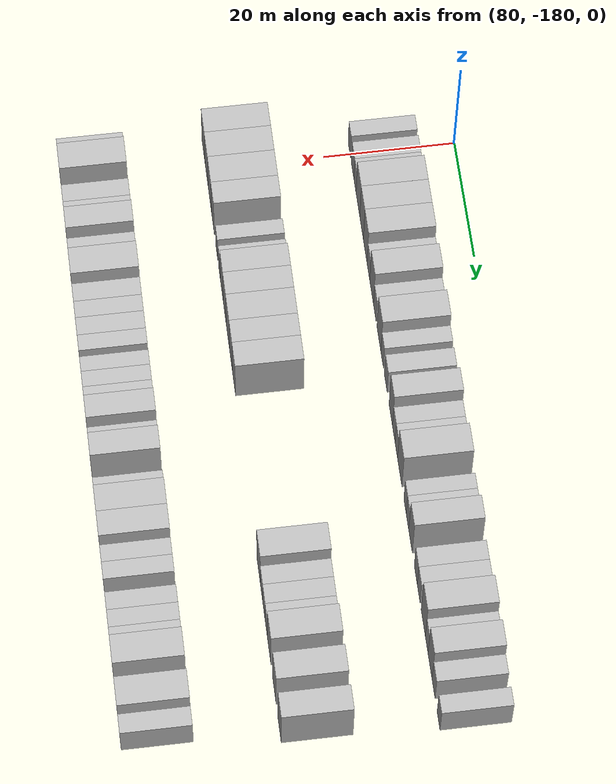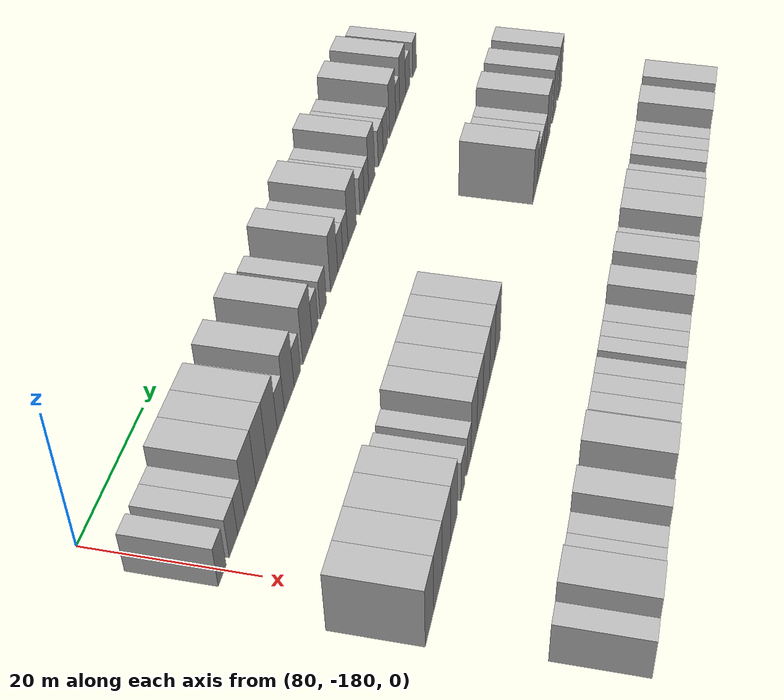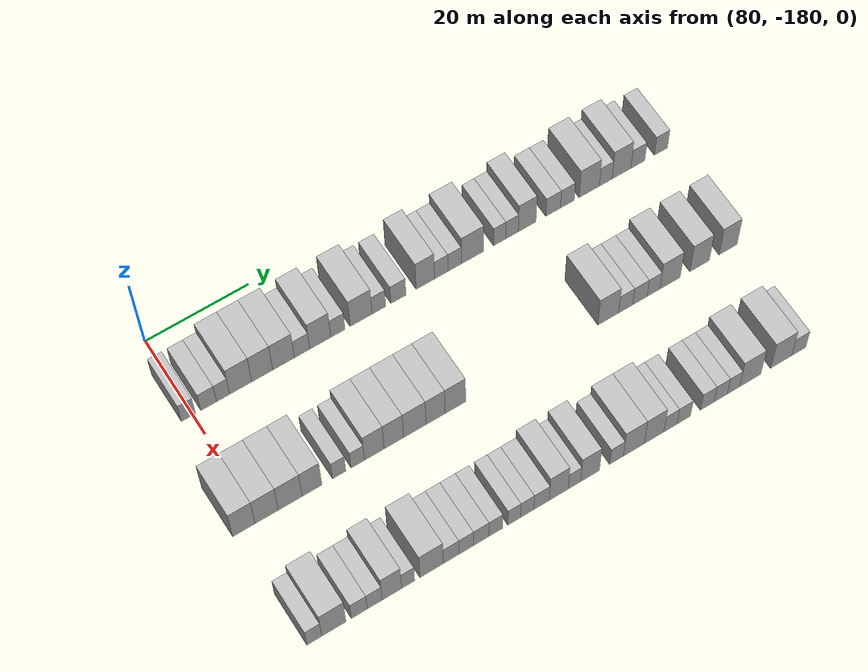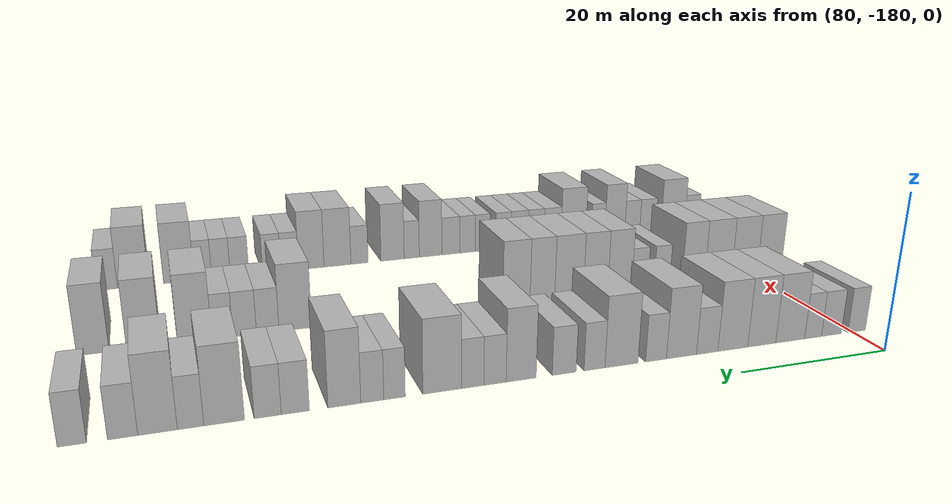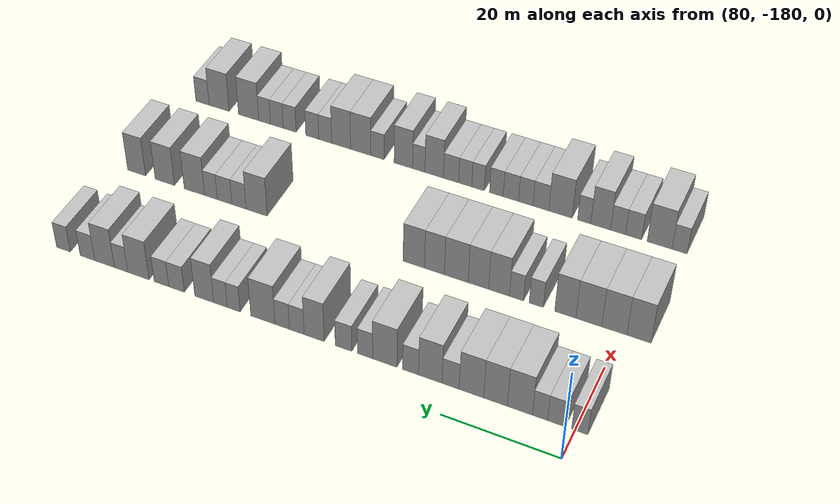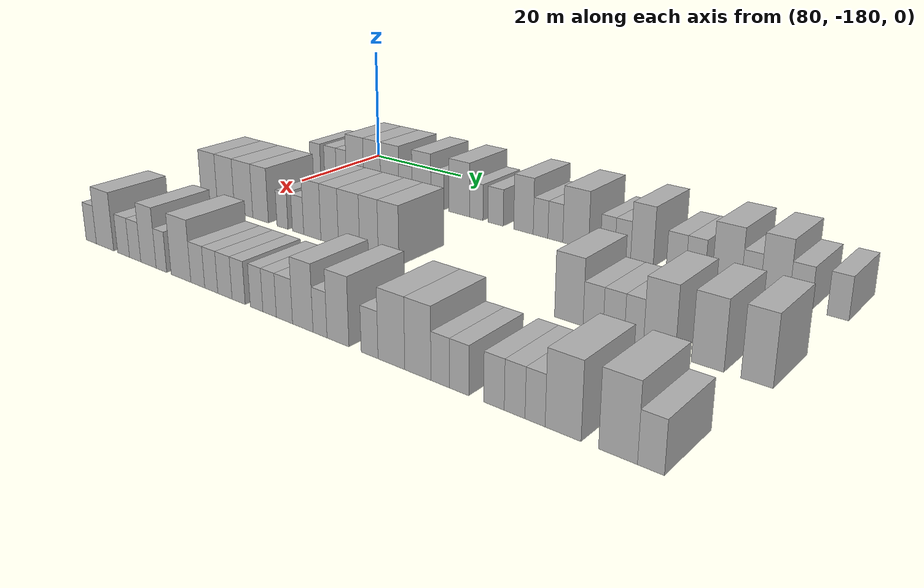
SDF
<sdf version="1.6">
 <world name="default">
  <model name="building_626">
   <static>1</static>
   <pose>91.0000 -180.7592 0 0.000000 0.000000 0.000000</pose>
   <link name="link">
    <pose>0 0 3.00 0 0 0</pose>
    <collision name="collision"><geometry><box><size>10.0000 2.6649 6.0000</size></box></geometry></collision>
    <visual name="visual">
     <cast_shadows>0</cast_shadows>
     <geometry><box><size>10.0000 2.6649 6.0000</size></box></geometry>
     <material>
      <script>
       <uri>model://HANNAS_wall/materials/scripts</uri>
       <uri>model://HANNAS_wall/materials/textures</uri>
       <name>vrc/HANNAS_wall</name>
      </script>
     </material>
    </visual>
   </link>
  </model>
  <model name="building_627">
   <static>1</static>
   <pose>91.0000 -176.9493 0 0.000000 0.000000 0.000000</pose>
   <link name="link">
    <pose>0 0 3.00 0 0 0</pose>
    <collision name="collision"><geometry><box><size>10.0000 2.9548 6.0000</size></box></geometry></collision>
    <visual name="visual">
     <cast_shadows>0</cast_shadows>
     <geometry><box><size>10.0000 2.9548 6.0000</size></box></geometry>
     <material>
      <script>
       <uri>model://HANNAS_wall/materials/scripts</uri>
       <uri>model://HANNAS_wall/materials/textures</uri>
       <name>vrc/HANNAS_wall</name>
      </script>
     </material>
    </visual>
   </link>
  </model>
  <model name="building_628">
   <static>1</static>
   <pose>91.0000 -174.2246 0 0.000000 0.000000 0.000000</pose>
   <link name="link">
    <pose>0 0 3.00 0 0 0</pose>
    <collision name="collision"><geometry><box><size>10.0000 2.4947 6.0000</size></box></geometry></collision>
    <visual name="visual">
     <cast_shadows>0</cast_shadows>
     <geometry><box><size>10.0000 2.4947 6.0000</size></box></geometry>
     <material>
      <script>
       <uri>model://HANNAS_wall/materials/scripts</uri>
       <uri>model://HANNAS_wall/materials/textures</uri>
       <name>vrc/HANNAS_wall</name>
      </script>
     </material>
    </visual>
   </link>
  </model>
  <model name="building_629">
   <static>1</static>
   <pose>91.0000 -170.8726 0 0.000000 0.000000 0.000000</pose>
   <link name="link">
    <pose>0 0 4.50 0 0 0</pose>
    <collision name="collision"><geometry><box><size>10.0000 4.2093 9.0000</size></box></geometry></collision>
    <visual name="visual">
     <cast_shadows>0</cast_shadows>
     <geometry><box><size>10.0000 4.2093 9.0000</size></box></geometry>
     <material>
      <script>
       <uri>model://HANNAS_wall/materials/scripts</uri>
       <uri>model://HANNAS_wall/materials/textures</uri>
       <name>vrc/HANNAS_wall</name>
      </script>
     </material>
    </visual>
   </link>
  </model>
  <model name="building_630">
   <static>1</static>
   <pose>91.0000 -166.7608 0 0.000000 0.000000 0.000000</pose>
   <link name="link">
    <pose>0 0 4.50 0 0 0</pose>
    <collision name="collision"><geometry><box><size>10.0000 4.0141 9.0000</size></box></geometry></collision>
    <visual name="visual">
     <cast_shadows>0</cast_shadows>
     <geometry><box><size>10.0000 4.0141 9.0000</size></box></geometry>
     <material>
      <script>
       <uri>model://HANNAS_wall/materials/scripts</uri>
       <uri>model://HANNAS_wall/materials/textures</uri>
       <name>vrc/HANNAS_wall</name>
      </script>
     </material>
    </visual>
   </link>
  </model>
  <model name="building_631">
   <static>1</static>
   <pose>91.0000 -162.6699 0 0.000000 0.000000 0.000000</pose>
   <link name="link">
    <pose>0 0 4.50 0 0 0</pose>
    <collision name="collision"><geometry><box><size>10.0000 4.1678 9.0000</size></box></geometry></collision>
    <visual name="visual">
     <cast_shadows>0</cast_shadows>
     <geometry><box><size>10.0000 4.1678 9.0000</size></box></geometry>
     <material>
      <script>
       <uri>model://HANNAS_wall/materials/scripts</uri>
       <uri>model://HANNAS_wall/materials/textures</uri>
       <name>vrc/HANNAS_wall</name>
      </script>
     </material>
    </visual>
   </link>
  </model>
  <model name="building_632">
   <static>1</static>
   <pose>91.0000 -159.1127 0 0.000000 0.000000 0.000000</pose>
   <link name="link">
    <pose>0 0 3.00 0 0 0</pose>
    <collision name="collision"><geometry><box><size>10.0000 2.9465 6.0000</size></box></geometry></collision>
    <visual name="visual">
     <cast_shadows>0</cast_shadows>
     <geometry><box><size>10.0000 2.9465 6.0000</size></box></geometry>
     <material>
      <script>
       <uri>model://HANNAS_wall/materials/scripts</uri>
       <uri>model://HANNAS_wall/materials/textures</uri>
       <name>vrc/HANNAS_wall</name>
      </script>
     </material>
    </visual>
   </link>
  </model>
  <model name="building_633">
   <static>1</static>
   <pose>91.0000 -155.6020 0 0.000000 0.000000 0.000000</pose>
   <link name="link">
    <pose>0 0 4.50 0 0 0</pose>
    <collision name="collision"><geometry><box><size>10.0000 4.0749 9.0000</size></box></geometry></collision>
    <visual name="visual">
     <cast_shadows>0</cast_shadows>
     <geometry><box><size>10.0000 4.0749 9.0000</size></box></geometry>
     <material>
      <script>
       <uri>model://HANNAS_wall/materials/scripts</uri>
       <uri>model://HANNAS_wall/materials/textures</uri>
       <name>vrc/HANNAS_wall</name>
      </script>
     </material>
    </visual>
   </link>
  </model>
  <model name="building_634">
   <static>1</static>
   <pose>91.0000 -152.1808 0 0.000000 0.000000 0.000000</pose>
   <link name="link">
    <pose>0 0 3.00 0 0 0</pose>
    <collision name="collision"><geometry><box><size>10.0000 2.7675 6.0000</size></box></geometry></collision>
    <visual name="visual">
     <cast_shadows>0</cast_shadows>
     <geometry><box><size>10.0000 2.7675 6.0000</size></box></geometry>
     <material>
      <script>
       <uri>model://HANNAS_wall/materials/scripts</uri>
       <uri>model://HANNAS_wall/materials/textures</uri>
       <name>vrc/HANNAS_wall</name>
      </script>
     </material>
    </visual>
   </link>
  </model>
  <model name="building_635">
   <static>1</static>
   <pose>91.0000 -147.6488 0 0.000000 0.000000 0.000000</pose>
   <link name="link">
    <pose>0 0 4.50 0 0 0</pose>
    <collision name="collision"><geometry><box><size>10.0000 4.2965 9.0000</size></box></geometry></collision>
    <visual name="visual">
     <cast_shadows>0</cast_shadows>
     <geometry><box><size>10.0000 4.2965 9.0000</size></box></geometry>
     <material>
      <script>
       <uri>model://HANNAS_wall/materials/scripts</uri>
       <uri>model://HANNAS_wall/materials/textures</uri>
       <name>vrc/HANNAS_wall</name>
      </script>
     </material>
    </visual>
   </link>
  </model>
  <model name="building_636">
   <static>1</static>
   <pose>91.0000 -144.1586 0 0.000000 0.000000 0.000000</pose>
   <link name="link">
    <pose>0 0 3.00 0 0 0</pose>
    <collision name="collision"><geometry><box><size>10.0000 2.6838 6.0000</size></box></geometry></collision>
    <visual name="visual">
     <cast_shadows>0</cast_shadows>
     <geometry><box><size>10.0000 2.6838 6.0000</size></box></geometry>
     <material>
      <script>
       <uri>model://HANNAS_wall/materials/scripts</uri>
       <uri>model://HANNAS_wall/materials/textures</uri>
       <name>vrc/HANNAS_wall</name>
      </script>
     </material>
    </visual>
   </link>
  </model>
  <model name="building_637">
   <static>1</static>
   <pose>91.0000 -140.3215 0 0.000000 0.000000 0.000000</pose>
   <link name="link">
    <pose>0 0 3.00 0 0 0</pose>
    <collision name="collision"><geometry><box><size>10.0000 2.9904 6.0000</size></box></geometry></collision>
    <visual name="visual">
     <cast_shadows>0</cast_shadows>
     <geometry><box><size>10.0000 2.9904 6.0000</size></box></geometry>
     <material>
      <script>
       <uri>model://HANNAS_wall/materials/scripts</uri>
       <uri>model://HANNAS_wall/materials/textures</uri>
       <name>vrc/HANNAS_wall</name>
      </script>
     </material>
    </visual>
   </link>
  </model>
  <model name="building_638">
   <static>1</static>
   <pose>91.0000 -135.0007 0 0.000000 0.000000 0.000000</pose>
   <link name="link">
    <pose>0 0 4.50 0 0 0</pose>
    <collision name="collision"><geometry><box><size>10.0000 3.6511 9.0000</size></box></geometry></collision>
    <visual name="visual">
     <cast_shadows>0</cast_shadows>
     <geometry><box><size>10.0000 3.6511 9.0000</size></box></geometry>
     <material>
      <script>
       <uri>model://HANNAS_wall/materials/scripts</uri>
       <uri>model://HANNAS_wall/materials/textures</uri>
       <name>vrc/HANNAS_wall</name>
      </script>
     </material>
    </visual>
   </link>
  </model>
  <model name="building_639">
   <static>1</static>
   <pose>91.0000 -131.8270 0 0.000000 0.000000 0.000000</pose>
   <link name="link">
    <pose>0 0 3.00 0 0 0</pose>
    <collision name="collision"><geometry><box><size>10.0000 2.6963 6.0000</size></box></geometry></collision>
    <visual name="visual">
     <cast_shadows>0</cast_shadows>
     <geometry><box><size>10.0000 2.6963 6.0000</size></box></geometry>
     <material>
      <script>
       <uri>model://HANNAS_wall/materials/scripts</uri>
       <uri>model://HANNAS_wall/materials/textures</uri>
       <name>vrc/HANNAS_wall</name>
      </script>
     </material>
    </visual>
   </link>
  </model>
  <model name="building_640">
   <static>1</static>
   <pose>91.0000 -129.1534 0 0.000000 0.000000 0.000000</pose>
   <link name="link">
    <pose>0 0 3.00 0 0 0</pose>
    <collision name="collision"><geometry><box><size>10.0000 2.6509 6.0000</size></box></geometry></collision>
    <visual name="visual">
     <cast_shadows>0</cast_shadows>
     <geometry><box><size>10.0000 2.6509 6.0000</size></box></geometry>
     <material>
      <script>
       <uri>model://HANNAS_wall/materials/scripts</uri>
       <uri>model://HANNAS_wall/materials/textures</uri>
       <name>vrc/HANNAS_wall</name>
      </script>
     </material>
    </visual>
   </link>
  </model>
  <model name="building_641">
   <static>1</static>
   <pose>91.0000 -125.5839 0 0.000000 0.000000 0.000000</pose>
   <link name="link">
    <pose>0 0 4.50 0 0 0</pose>
    <collision name="collision"><geometry><box><size>10.0000 4.4882 9.0000</size></box></geometry></collision>
    <visual name="visual">
     <cast_shadows>0</cast_shadows>
     <geometry><box><size>10.0000 4.4882 9.0000</size></box></geometry>
     <material>
      <script>
       <uri>model://HANNAS_wall/materials/scripts</uri>
       <uri>model://HANNAS_wall/materials/textures</uri>
       <name>vrc/HANNAS_wall</name>
      </script>
     </material>
    </visual>
   </link>
  </model>
  <model name="building_642">
   <static>1</static>
   <pose>91.0000 -120.1271 0 0.000000 0.000000 0.000000</pose>
   <link name="link">
    <pose>0 0 3.00 0 0 0</pose>
    <collision name="collision"><geometry><box><size>10.0000 2.4254 6.0000</size></box></geometry></collision>
    <visual name="visual">
     <cast_shadows>0</cast_shadows>
     <geometry><box><size>10.0000 2.4254 6.0000</size></box></geometry>
     <material>
      <script>
       <uri>model://HANNAS_wall/materials/scripts</uri>
       <uri>model://HANNAS_wall/materials/textures</uri>
       <name>vrc/HANNAS_wall</name>
      </script>
     </material>
    </visual>
   </link>
  </model>
  <model name="building_643">
   <static>1</static>
   <pose>91.0000 -117.6336 0 0.000000 0.000000 0.000000</pose>
   <link name="link">
    <pose>0 0 3.00 0 0 0</pose>
    <collision name="collision"><geometry><box><size>10.0000 2.5616 6.0000</size></box></geometry></collision>
    <visual name="visual">
     <cast_shadows>0</cast_shadows>
     <geometry><box><size>10.0000 2.5616 6.0000</size></box></geometry>
     <material>
      <script>
       <uri>model://HANNAS_wall/materials/scripts</uri>
       <uri>model://HANNAS_wall/materials/textures</uri>
       <name>vrc/HANNAS_wall</name>
      </script>
     </material>
    </visual>
   </link>
  </model>
  <model name="building_644">
   <static>1</static>
   <pose>91.0000 -114.5478 0 0.000000 0.000000 0.000000</pose>
   <link name="link">
    <pose>0 0 4.50 0 0 0</pose>
    <collision name="collision"><geometry><box><size>10.0000 3.6099 9.0000</size></box></geometry></collision>
    <visual name="visual">
     <cast_shadows>0</cast_shadows>
     <geometry><box><size>10.0000 3.6099 9.0000</size></box></geometry>
     <material>
      <script>
       <uri>model://HANNAS_wall/materials/scripts</uri>
       <uri>model://HANNAS_wall/materials/textures</uri>
       <name>vrc/HANNAS_wall</name>
      </script>
     </material>
    </visual>
   </link>
  </model>
  <model name="building_645">
   <static>1</static>
   <pose>91.0000 -109.2446 0 0.000000 0.000000 0.000000</pose>
   <link name="link">
    <pose>0 0 3.00 0 0 0</pose>
    <collision name="collision"><geometry><box><size>10.0000 2.9964 6.0000</size></box></geometry></collision>
    <visual name="visual">
     <cast_shadows>0</cast_shadows>
     <geometry><box><size>10.0000 2.9964 6.0000</size></box></geometry>
     <material>
      <script>
       <uri>model://HANNAS_wall/materials/scripts</uri>
       <uri>model://HANNAS_wall/materials/textures</uri>
       <name>vrc/HANNAS_wall</name>
      </script>
     </material>
    </visual>
   </link>
  </model>
  <model name="building_646">
   <static>1</static>
   <pose>91.0000 -106.3276 0 0.000000 0.000000 0.000000</pose>
   <link name="link">
    <pose>0 0 3.00 0 0 0</pose>
    <collision name="collision"><geometry><box><size>10.0000 2.8377 6.0000</size></box></geometry></collision>
    <visual name="visual">
     <cast_shadows>0</cast_shadows>
     <geometry><box><size>10.0000 2.8377 6.0000</size></box></geometry>
     <material>
      <script>
       <uri>model://HANNAS_wall/materials/scripts</uri>
       <uri>model://HANNAS_wall/materials/textures</uri>
       <name>vrc/HANNAS_wall</name>
      </script>
     </material>
    </visual>
   </link>
  </model>
  <model name="building_647">
   <static>1</static>
   <pose>91.0000 -101.8287 0 0.000000 0.000000 0.000000</pose>
   <link name="link">
    <pose>0 0 4.50 0 0 0</pose>
    <collision name="collision"><geometry><box><size>10.0000 4.1600 9.0000</size></box></geometry></collision>
    <visual name="visual">
     <cast_shadows>0</cast_shadows>
     <geometry><box><size>10.0000 4.1600 9.0000</size></box></geometry>
     <material>
      <script>
       <uri>model://HANNAS_wall/materials/scripts</uri>
       <uri>model://HANNAS_wall/materials/textures</uri>
       <name>vrc/HANNAS_wall</name>
      </script>
     </material>
    </visual>
   </link>
  </model>
  <model name="building_648">
   <static>1</static>
   <pose>91.0000 -98.4226 0 0.000000 0.000000 0.000000</pose>
   <link name="link">
    <pose>0 0 3.00 0 0 0</pose>
    <collision name="collision"><geometry><box><size>10.0000 2.6522 6.0000</size></box></geometry></collision>
    <visual name="visual">
     <cast_shadows>0</cast_shadows>
     <geometry><box><size>10.0000 2.6522 6.0000</size></box></geometry>
     <material>
      <script>
       <uri>model://HANNAS_wall/materials/scripts</uri>
       <uri>model://HANNAS_wall/materials/textures</uri>
       <name>vrc/HANNAS_wall</name>
      </script>
     </material>
    </visual>
   </link>
  </model>
  <model name="building_649">
   <static>1</static>
   <pose>91.0000 -95.1487 0 0.000000 0.000000 0.000000</pose>
   <link name="link">
    <pose>0 0 4.50 0 0 0</pose>
    <collision name="collision"><geometry><box><size>10.0000 3.8957 9.0000</size></box></geometry></collision>
    <visual name="visual">
     <cast_shadows>0</cast_shadows>
     <geometry><box><size>10.0000 3.8957 9.0000</size></box></geometry>
     <material>
      <script>
       <uri>model://HANNAS_wall/materials/scripts</uri>
       <uri>model://HANNAS_wall/materials/textures</uri>
       <name>vrc/HANNAS_wall</name>
      </script>
     </material>
    </visual>
   </link>
  </model>
  <model name="building_650">
   <static>1</static>
   <pose>91.0000 -91.7350 0 0.000000 0.000000 0.000000</pose>
   <link name="link">
    <pose>0 0 3.00 0 0 0</pose>
    <collision name="collision"><geometry><box><size>10.0000 2.9318 6.0000</size></box></geometry></collision>
    <visual name="visual">
     <cast_shadows>0</cast_shadows>
     <geometry><box><size>10.0000 2.9318 6.0000</size></box></geometry>
     <material>
      <script>
       <uri>model://HANNAS_wall/materials/scripts</uri>
       <uri>model://HANNAS_wall/materials/textures</uri>
       <name>vrc/HANNAS_wall</name>
      </script>
     </material>
    </visual>
   </link>
  </model>
  <model name="building_651">
   <static>1</static>
   <pose>91.0000 -86.8940 0 0.000000 0.000000 0.000000</pose>
   <link name="link">
    <pose>0 0 3.00 0 0 0</pose>
    <collision name="collision"><geometry><box><size>10.0000 2.7502 6.0000</size></box></geometry></collision>
    <visual name="visual">
     <cast_shadows>0</cast_shadows>
     <geometry><box><size>10.0000 2.7502 6.0000</size></box></geometry>
     <material>
      <script>
       <uri>model://HANNAS_wall/materials/scripts</uri>
       <uri>model://HANNAS_wall/materials/textures</uri>
       <name>vrc/HANNAS_wall</name>
      </script>
     </material>
    </visual>
   </link>
  </model>
  <model name="building_816">
   <static>1</static>
   <pose>113.0000 -183.0096 0 0.000000 0.000000 0.000000</pose>
   <link name="link">
    <pose>0 0 4.50 0 0 0</pose>
    <collision name="collision"><geometry><box><size>10.0000 4.1429 9.0000</size></box></geometry></collision>
    <visual name="visual">
     <cast_shadows>0</cast_shadows>
     <geometry><box><size>10.0000 4.1429 9.0000</size></box></geometry>
     <material>
      <script>
       <uri>model://HANNAS_wall/materials/scripts</uri>
       <uri>model://HANNAS_wall/materials/textures</uri>
       <name>vrc/HANNAS_wall</name>
      </script>
     </material>
    </visual>
   </link>
  </model>
  <model name="building_817">
   <static>1</static>
   <pose>113.0000 -178.7763 0 0.000000 0.000000 0.000000</pose>
   <link name="link">
    <pose>0 0 4.50 0 0 0</pose>
    <collision name="collision"><geometry><box><size>10.0000 4.3236 9.0000</size></box></geometry></collision>
    <visual name="visual">
     <cast_shadows>0</cast_shadows>
     <geometry><box><size>10.0000 4.3236 9.0000</size></box></geometry>
     <material>
      <script>
       <uri>model://HANNAS_wall/materials/scripts</uri>
       <uri>model://HANNAS_wall/materials/textures</uri>
       <name>vrc/HANNAS_wall</name>
      </script>
     </material>
    </visual>
   </link>
  </model>
  <model name="building_818">
   <static>1</static>
   <pose>113.0000 -174.3794 0 0.000000 0.000000 0.000000</pose>
   <link name="link">
    <pose>0 0 4.50 0 0 0</pose>
    <collision name="collision"><geometry><box><size>10.0000 4.4702 9.0000</size></box></geometry></collision>
    <visual name="visual">
     <cast_shadows>0</cast_shadows>
     <geometry><box><size>10.0000 4.4702 9.0000</size></box></geometry>
     <material>
      <script>
       <uri>model://HANNAS_wall/materials/scripts</uri>
       <uri>model://HANNAS_wall/materials/textures</uri>
       <name>vrc/HANNAS_wall</name>
      </script>
     </material>
    </visual>
   </link>
  </model>
  <model name="building_819">
   <static>1</static>
   <pose>113.0000 -170.2859 0 0.000000 0.000000 0.000000</pose>
   <link name="link">
    <pose>0 0 4.50 0 0 0</pose>
    <collision name="collision"><geometry><box><size>10.0000 3.7168 9.0000</size></box></geometry></collision>
    <visual name="visual">
     <cast_shadows>0</cast_shadows>
     <geometry><box><size>10.0000 3.7168 9.0000</size></box></geometry>
     <material>
      <script>
       <uri>model://HANNAS_wall/materials/scripts</uri>
       <uri>model://HANNAS_wall/materials/textures</uri>
       <name>vrc/HANNAS_wall</name>
      </script>
     </material>
    </visual>
   </link>
  </model>
  <model name="building_820">
   <static>1</static>
   <pose>113.0000 -165.1693 0 0.000000 0.000000 0.000000</pose>
   <link name="link">
    <pose>0 0 3.00 0 0 0</pose>
    <collision name="collision"><geometry><box><size>10.0000 2.5165 6.0000</size></box></geometry></collision>
    <visual name="visual">
     <cast_shadows>0</cast_shadows>
     <geometry><box><size>10.0000 2.5165 6.0000</size></box></geometry>
     <material>
      <script>
       <uri>model://HANNAS_wall/materials/scripts</uri>
       <uri>model://HANNAS_wall/materials/textures</uri>
       <name>vrc/HANNAS_wall</name>
      </script>
     </material>
    </visual>
   </link>
  </model>
  <model name="building_821">
   <static>1</static>
   <pose>113.0000 -161.6518 0 0.000000 0.000000 0.000000</pose>
   <link name="link">
    <pose>0 0 3.00 0 0 0</pose>
    <collision name="collision"><geometry><box><size>10.0000 2.5184 6.0000</size></box></geometry></collision>
    <visual name="visual">
     <cast_shadows>0</cast_shadows>
     <geometry><box><size>10.0000 2.5184 6.0000</size></box></geometry>
     <material>
      <script>
       <uri>model://HANNAS_wall/materials/scripts</uri>
       <uri>model://HANNAS_wall/materials/textures</uri>
       <name>vrc/HANNAS_wall</name>
      </script>
     </material>
    </visual>
   </link>
  </model>
  <model name="building_822">
   <static>1</static>
   <pose>113.0000 -158.5178 0 0.000000 0.000000 0.000000</pose>
   <link name="link">
    <pose>0 0 4.50 0 0 0</pose>
    <collision name="collision"><geometry><box><size>10.0000 3.7496 9.0000</size></box></geometry></collision>
    <visual name="visual">
     <cast_shadows>0</cast_shadows>
     <geometry><box><size>10.0000 3.7496 9.0000</size></box></geometry>
     <material>
      <script>
       <uri>model://HANNAS_wall/materials/scripts</uri>
       <uri>model://HANNAS_wall/materials/textures</uri>
       <name>vrc/HANNAS_wall</name>
      </script>
     </material>
    </visual>
   </link>
  </model>
  <model name="building_823">
   <static>1</static>
   <pose>113.0000 -154.7814 0 0.000000 0.000000 0.000000</pose>
   <link name="link">
    <pose>0 0 4.50 0 0 0</pose>
    <collision name="collision"><geometry><box><size>10.0000 3.7232 9.0000</size></box></geometry></collision>
    <visual name="visual">
     <cast_shadows>0</cast_shadows>
     <geometry><box><size>10.0000 3.7232 9.0000</size></box></geometry>
     <material>
      <script>
       <uri>model://HANNAS_wall/materials/scripts</uri>
       <uri>model://HANNAS_wall/materials/textures</uri>
       <name>vrc/HANNAS_wall</name>
      </script>
     </material>
    </visual>
   </link>
  </model>
  <model name="building_824">
   <static>1</static>
   <pose>113.0000 -150.7451 0 0.000000 0.000000 0.000000</pose>
   <link name="link">
    <pose>0 0 4.50 0 0 0</pose>
    <collision name="collision"><geometry><box><size>10.0000 4.3495 9.0000</size></box></geometry></collision>
    <visual name="visual">
     <cast_shadows>0</cast_shadows>
     <geometry><box><size>10.0000 4.3495 9.0000</size></box></geometry>
     <material>
      <script>
       <uri>model://HANNAS_wall/materials/scripts</uri>
       <uri>model://HANNAS_wall/materials/textures</uri>
       <name>vrc/HANNAS_wall</name>
      </script>
     </material>
    </visual>
   </link>
  </model>
  <model name="building_825">
   <static>1</static>
   <pose>113.0000 -146.7356 0 0.000000 0.000000 0.000000</pose>
   <link name="link">
    <pose>0 0 4.50 0 0 0</pose>
    <collision name="collision"><geometry><box><size>10.0000 3.6694 9.0000</size></box></geometry></collision>
    <visual name="visual">
     <cast_shadows>0</cast_shadows>
     <geometry><box><size>10.0000 3.6694 9.0000</size></box></geometry>
     <material>
      <script>
       <uri>model://HANNAS_wall/materials/scripts</uri>
       <uri>model://HANNAS_wall/materials/textures</uri>
       <name>vrc/HANNAS_wall</name>
      </script>
     </material>
    </visual>
   </link>
  </model>
  <model name="building_826">
   <static>1</static>
   <pose>113.0000 -142.9142 0 0.000000 0.000000 0.000000</pose>
   <link name="link">
    <pose>0 0 4.50 0 0 0</pose>
    <collision name="collision"><geometry><box><size>10.0000 3.9734 9.0000</size></box></geometry></collision>
    <visual name="visual">
     <cast_shadows>0</cast_shadows>
     <geometry><box><size>10.0000 3.9734 9.0000</size></box></geometry>
     <material>
      <script>
       <uri>model://HANNAS_wall/materials/scripts</uri>
       <uri>model://HANNAS_wall/materials/textures</uri>
       <name>vrc/HANNAS_wall</name>
      </script>
     </material>
    </visual>
   </link>
  </model>
  <model name="building_827">
   <static>1</static>
   <pose>113.0000 -112.6623 0 0.000000 0.000000 0.000000</pose>
   <link name="link">
    <pose>0 0 4.50 0 0 0</pose>
    <collision name="collision"><geometry><box><size>10.0000 4.1768 9.0000</size></box></geometry></collision>
    <visual name="visual">
     <cast_shadows>0</cast_shadows>
     <geometry><box><size>10.0000 4.1768 9.0000</size></box></geometry>
     <material>
      <script>
       <uri>model://HANNAS_wall/materials/scripts</uri>
       <uri>model://HANNAS_wall/materials/textures</uri>
       <name>vrc/HANNAS_wall</name>
      </script>
     </material>
    </visual>
   </link>
  </model>
  <model name="building_828">
   <static>1</static>
   <pose>113.0000 -109.1521 0 0.000000 0.000000 0.000000</pose>
   <link name="link">
    <pose>0 0 3.00 0 0 0</pose>
    <collision name="collision"><geometry><box><size>10.0000 2.8436 6.0000</size></box></geometry></collision>
    <visual name="visual">
     <cast_shadows>0</cast_shadows>
     <geometry><box><size>10.0000 2.8436 6.0000</size></box></geometry>
     <material>
      <script>
       <uri>model://HANNAS_wall/materials/scripts</uri>
       <uri>model://HANNAS_wall/materials/textures</uri>
       <name>vrc/HANNAS_wall</name>
      </script>
     </material>
    </visual>
   </link>
  </model>
  <model name="building_829">
   <static>1</static>
   <pose>113.0000 -106.2604 0 0.000000 0.000000 0.000000</pose>
   <link name="link">
    <pose>0 0 3.00 0 0 0</pose>
    <collision name="collision"><geometry><box><size>10.0000 2.9399 6.0000</size></box></geometry></collision>
    <visual name="visual">
     <cast_shadows>0</cast_shadows>
     <geometry><box><size>10.0000 2.9399 6.0000</size></box></geometry>
     <material>
      <script>
       <uri>model://HANNAS_wall/materials/scripts</uri>
       <uri>model://HANNAS_wall/materials/textures</uri>
       <name>vrc/HANNAS_wall</name>
      </script>
     </material>
    </visual>
   </link>
  </model>
  <model name="building_830">
   <static>1</static>
   <pose>113.0000 -103.5051 0 0.000000 0.000000 0.000000</pose>
   <link name="link">
    <pose>0 0 3.00 0 0 0</pose>
    <collision name="collision"><geometry><box><size>10.0000 2.5707 6.0000</size></box></geometry></collision>
    <visual name="visual">
     <cast_shadows>0</cast_shadows>
     <geometry><box><size>10.0000 2.5707 6.0000</size></box></geometry>
     <material>
      <script>
       <uri>model://HANNAS_wall/materials/scripts</uri>
       <uri>model://HANNAS_wall/materials/textures</uri>
       <name>vrc/HANNAS_wall</name>
      </script>
     </material>
    </visual>
   </link>
  </model>
  <model name="building_831">
   <static>1</static>
   <pose>113.0000 -100.1390 0 0.000000 0.000000 0.000000</pose>
   <link name="link">
    <pose>0 0 4.50 0 0 0</pose>
    <collision name="collision"><geometry><box><size>10.0000 4.1614 9.0000</size></box></geometry></collision>
    <visual name="visual">
     <cast_shadows>0</cast_shadows>
     <geometry><box><size>10.0000 4.1614 9.0000</size></box></geometry>
     <material>
      <script>
       <uri>model://HANNAS_wall/materials/scripts</uri>
       <uri>model://HANNAS_wall/materials/textures</uri>
       <name>vrc/HANNAS_wall</name>
      </script>
     </material>
    </visual>
   </link>
  </model>
  <model name="building_832">
   <static>1</static>
   <pose>113.0000 -94.0558 0 0.000000 0.000000 0.000000</pose>
   <link name="link">
    <pose>0 0 4.50 0 0 0</pose>
    <collision name="collision"><geometry><box><size>10.0000 4.0050 9.0000</size></box></geometry></collision>
    <visual name="visual">
     <cast_shadows>0</cast_shadows>
     <geometry><box><size>10.0000 4.0050 9.0000</size></box></geometry>
     <material>
      <script>
       <uri>model://HANNAS_wall/materials/scripts</uri>
       <uri>model://HANNAS_wall/materials/textures</uri>
       <name>vrc/HANNAS_wall</name>
      </script>
     </material>
    </visual>
   </link>
  </model>
  <model name="building_833">
   <static>1</static>
   <pose>113.0000 -88.1848 0 0.000000 0.000000 0.000000</pose>
   <link name="link">
    <pose>0 0 4.50 0 0 0</pose>
    <collision name="collision"><geometry><box><size>10.0000 3.7369 9.0000</size></box></geometry></collision>
    <visual name="visual">
     <cast_shadows>0</cast_shadows>
     <geometry><box><size>10.0000 3.7369 9.0000</size></box></geometry>
     <material>
      <script>
       <uri>model://HANNAS_wall/materials/scripts</uri>
       <uri>model://HANNAS_wall/materials/textures</uri>
       <name>vrc/HANNAS_wall</name>
      </script>
     </material>
    </visual>
   </link>
  </model>
  <model name="building_1004">
   <static>1</static>
   <pose>135.0000 -182.9810 0 0.000000 0.000000 0.000000</pose>
   <link name="link">
    <pose>0 0 3.00 0 0 0</pose>
    <collision name="collision"><geometry><box><size>10.0000 2.7068 6.0000</size></box></geometry></collision>
    <visual name="visual">
     <cast_shadows>0</cast_shadows>
     <geometry><box><size>10.0000 2.7068 6.0000</size></box></geometry>
     <material>
      <script>
       <uri>model://HANNAS_wall/materials/scripts</uri>
       <uri>model://HANNAS_wall/materials/textures</uri>
       <name>vrc/HANNAS_wall</name>
      </script>
     </material>
    </visual>
   </link>
  </model>
  <model name="building_1005">
   <static>1</static>
   <pose>135.0000 -179.4038 0 0.000000 0.000000 0.000000</pose>
   <link name="link">
    <pose>0 0 4.50 0 0 0</pose>
    <collision name="collision"><geometry><box><size>10.0000 4.4478 9.0000</size></box></geometry></collision>
    <visual name="visual">
     <cast_shadows>0</cast_shadows>
     <geometry><box><size>10.0000 4.4478 9.0000</size></box></geometry>
     <material>
      <script>
       <uri>model://HANNAS_wall/materials/scripts</uri>
       <uri>model://HANNAS_wall/materials/textures</uri>
       <name>vrc/HANNAS_wall</name>
      </script>
     </material>
    </visual>
   </link>
  </model>
  <model name="building_1006">
   <static>1</static>
   <pose>135.0000 -174.7123 0 0.000000 0.000000 0.000000</pose>
   <link name="link">
    <pose>0 0 3.00 0 0 0</pose>
    <collision name="collision"><geometry><box><size>10.0000 2.9352 6.0000</size></box></geometry></collision>
    <visual name="visual">
     <cast_shadows>0</cast_shadows>
     <geometry><box><size>10.0000 2.9352 6.0000</size></box></geometry>
     <material>
      <script>
       <uri>model://HANNAS_wall/materials/scripts</uri>
       <uri>model://HANNAS_wall/materials/textures</uri>
       <name>vrc/HANNAS_wall</name>
      </script>
     </material>
    </visual>
   </link>
  </model>
  <model name="building_1007">
   <static>1</static>
   <pose>135.0000 -171.8768 0 0.000000 0.000000 0.000000</pose>
   <link name="link">
    <pose>0 0 3.00 0 0 0</pose>
    <collision name="collision"><geometry><box><size>10.0000 2.7357 6.0000</size></box></geometry></collision>
    <visual name="visual">
     <cast_shadows>0</cast_shadows>
     <geometry><box><size>10.0000 2.7357 6.0000</size></box></geometry>
     <material>
      <script>
       <uri>model://HANNAS_wall/materials/scripts</uri>
       <uri>model://HANNAS_wall/materials/textures</uri>
       <name>vrc/HANNAS_wall</name>
      </script>
     </material>
    </visual>
   </link>
  </model>
  <model name="building_1008">
   <static>1</static>
   <pose>135.0000 -168.6941 0 0.000000 0.000000 0.000000</pose>
   <link name="link">
    <pose>0 0 4.50 0 0 0</pose>
    <collision name="collision"><geometry><box><size>10.0000 3.6298 9.0000</size></box></geometry></collision>
    <visual name="visual">
     <cast_shadows>0</cast_shadows>
     <geometry><box><size>10.0000 3.6298 9.0000</size></box></geometry>
     <material>
      <script>
       <uri>model://HANNAS_wall/materials/scripts</uri>
       <uri>model://HANNAS_wall/materials/textures</uri>
       <name>vrc/HANNAS_wall</name>
      </script>
     </material>
    </visual>
   </link>
  </model>
  <model name="building_1009">
   <static>1</static>
   <pose>135.0000 -165.6674 0 0.000000 0.000000 0.000000</pose>
   <link name="link">
    <pose>0 0 3.00 0 0 0</pose>
    <collision name="collision"><geometry><box><size>10.0000 2.4236 6.0000</size></box></geometry></collision>
    <visual name="visual">
     <cast_shadows>0</cast_shadows>
     <geometry><box><size>10.0000 2.4236 6.0000</size></box></geometry>
     <material>
      <script>
       <uri>model://HANNAS_wall/materials/scripts</uri>
       <uri>model://HANNAS_wall/materials/textures</uri>
       <name>vrc/HANNAS_wall</name>
      </script>
     </material>
    </visual>
   </link>
  </model>
  <model name="building_1010">
   <static>1</static>
   <pose>135.0000 -161.2664 0 0.000000 0.000000 0.000000</pose>
   <link name="link">
    <pose>0 0 4.50 0 0 0</pose>
    <collision name="collision"><geometry><box><size>10.0000 4.3782 9.0000</size></box></geometry></collision>
    <visual name="visual">
     <cast_shadows>0</cast_shadows>
     <geometry><box><size>10.0000 4.3782 9.0000</size></box></geometry>
     <material>
      <script>
       <uri>model://HANNAS_wall/materials/scripts</uri>
       <uri>model://HANNAS_wall/materials/textures</uri>
       <name>vrc/HANNAS_wall</name>
      </script>
     </material>
    </visual>
   </link>
  </model>
  <model name="building_1011">
   <static>1</static>
   <pose>135.0000 -157.5925 0 0.000000 0.000000 0.000000</pose>
   <link name="link">
    <pose>0 0 3.00 0 0 0</pose>
    <collision name="collision"><geometry><box><size>10.0000 2.9697 6.0000</size></box></geometry></collision>
    <visual name="visual">
     <cast_shadows>0</cast_shadows>
     <geometry><box><size>10.0000 2.9697 6.0000</size></box></geometry>
     <material>
      <script>
       <uri>model://HANNAS_wall/materials/scripts</uri>
       <uri>model://HANNAS_wall/materials/textures</uri>
       <name>vrc/HANNAS_wall</name>
      </script>
     </material>
    </visual>
   </link>
  </model>
  <model name="building_1012">
   <static>1</static>
   <pose>135.0000 -154.7378 0 0.000000 0.000000 0.000000</pose>
   <link name="link">
    <pose>0 0 3.00 0 0 0</pose>
    <collision name="collision"><geometry><box><size>10.0000 2.7398 6.0000</size></box></geometry></collision>
    <visual name="visual">
     <cast_shadows>0</cast_shadows>
     <geometry><box><size>10.0000 2.7398 6.0000</size></box></geometry>
     <material>
      <script>
       <uri>model://HANNAS_wall/materials/scripts</uri>
       <uri>model://HANNAS_wall/materials/textures</uri>
       <name>vrc/HANNAS_wall</name>
      </script>
     </material>
    </visual>
   </link>
  </model>
  <model name="building_1013">
   <static>1</static>
   <pose>135.0000 -151.9115 0 0.000000 0.000000 0.000000</pose>
   <link name="link">
    <pose>0 0 3.00 0 0 0</pose>
    <collision name="collision"><geometry><box><size>10.0000 2.9129 6.0000</size></box></geometry></collision>
    <visual name="visual">
     <cast_shadows>0</cast_shadows>
     <geometry><box><size>10.0000 2.9129 6.0000</size></box></geometry>
     <material>
      <script>
       <uri>model://HANNAS_wall/materials/scripts</uri>
       <uri>model://HANNAS_wall/materials/textures</uri>
       <name>vrc/HANNAS_wall</name>
      </script>
     </material>
    </visual>
   </link>
  </model>
  <model name="building_1014">
   <static>1</static>
   <pose>135.0000 -149.1515 0 0.000000 0.000000 0.000000</pose>
   <link name="link">
    <pose>0 0 3.00 0 0 0</pose>
    <collision name="collision"><geometry><box><size>10.0000 2.6071 6.0000</size></box></geometry></collision>
    <visual name="visual">
     <cast_shadows>0</cast_shadows>
     <geometry><box><size>10.0000 2.6071 6.0000</size></box></geometry>
     <material>
      <script>
       <uri>model://HANNAS_wall/materials/scripts</uri>
       <uri>model://HANNAS_wall/materials/textures</uri>
       <name>vrc/HANNAS_wall</name>
      </script>
     </material>
    </visual>
   </link>
  </model>
  <model name="building_1015">
   <static>1</static>
   <pose>135.0000 -145.6320 0 0.000000 0.000000 0.000000</pose>
   <link name="link">
    <pose>0 0 3.00 0 0 0</pose>
    <collision name="collision"><geometry><box><size>10.0000 2.4317 6.0000</size></box></geometry></collision>
    <visual name="visual">
     <cast_shadows>0</cast_shadows>
     <geometry><box><size>10.0000 2.4317 6.0000</size></box></geometry>
     <material>
      <script>
       <uri>model://HANNAS_wall/materials/scripts</uri>
       <uri>model://HANNAS_wall/materials/textures</uri>
       <name>vrc/HANNAS_wall</name>
      </script>
     </material>
    </visual>
   </link>
  </model>
  <model name="building_1016">
   <static>1</static>
   <pose>135.0000 -143.1464 0 0.000000 0.000000 0.000000</pose>
   <link name="link">
    <pose>0 0 3.00 0 0 0</pose>
    <collision name="collision"><geometry><box><size>10.0000 2.5397 6.0000</size></box></geometry></collision>
    <visual name="visual">
     <cast_shadows>0</cast_shadows>
     <geometry><box><size>10.0000 2.5397 6.0000</size></box></geometry>
     <material>
      <script>
       <uri>model://HANNAS_wall/materials/scripts</uri>
       <uri>model://HANNAS_wall/materials/textures</uri>
       <name>vrc/HANNAS_wall</name>
      </script>
     </material>
    </visual>
   </link>
  </model>
  <model name="building_1017">
   <static>1</static>
   <pose>135.0000 -140.3926 0 0.000000 0.000000 0.000000</pose>
   <link name="link">
    <pose>0 0 3.00 0 0 0</pose>
    <collision name="collision"><geometry><box><size>10.0000 2.9678 6.0000</size></box></geometry></collision>
    <visual name="visual">
     <cast_shadows>0</cast_shadows>
     <geometry><box><size>10.0000 2.9678 6.0000</size></box></geometry>
     <material>
      <script>
       <uri>model://HANNAS_wall/materials/scripts</uri>
       <uri>model://HANNAS_wall/materials/textures</uri>
       <name>vrc/HANNAS_wall</name>
      </script>
     </material>
    </visual>
   </link>
  </model>
  <model name="building_1018">
   <static>1</static>
   <pose>135.0000 -137.0838 0 0.000000 0.000000 0.000000</pose>
   <link name="link">
    <pose>0 0 4.50 0 0 0</pose>
    <collision name="collision"><geometry><box><size>10.0000 3.6500 9.0000</size></box></geometry></collision>
    <visual name="visual">
     <cast_shadows>0</cast_shadows>
     <geometry><box><size>10.0000 3.6500 9.0000</size></box></geometry>
     <material>
      <script>
       <uri>model://HANNAS_wall/materials/scripts</uri>
       <uri>model://HANNAS_wall/materials/textures</uri>
       <name>vrc/HANNAS_wall</name>
      </script>
     </material>
    </visual>
   </link>
  </model>
  <model name="building_1019">
   <static>1</static>
   <pose>135.0000 -134.0546 0 0.000000 0.000000 0.000000</pose>
   <link name="link">
    <pose>0 0 3.00 0 0 0</pose>
    <collision name="collision"><geometry><box><size>10.0000 2.4083 6.0000</size></box></geometry></collision>
    <visual name="visual">
     <cast_shadows>0</cast_shadows>
     <geometry><box><size>10.0000 2.4083 6.0000</size></box></geometry>
     <material>
      <script>
       <uri>model://HANNAS_wall/materials/scripts</uri>
       <uri>model://HANNAS_wall/materials/textures</uri>
       <name>vrc/HANNAS_wall</name>
      </script>
     </material>
    </visual>
   </link>
  </model>
  <model name="building_1020">
   <static>1</static>
   <pose>135.0000 -131.0124 0 0.000000 0.000000 0.000000</pose>
   <link name="link">
    <pose>0 0 4.50 0 0 0</pose>
    <collision name="collision"><geometry><box><size>10.0000 3.6762 9.0000</size></box></geometry></collision>
    <visual name="visual">
     <cast_shadows>0</cast_shadows>
     <geometry><box><size>10.0000 3.6762 9.0000</size></box></geometry>
     <material>
      <script>
       <uri>model://HANNAS_wall/materials/scripts</uri>
       <uri>model://HANNAS_wall/materials/textures</uri>
       <name>vrc/HANNAS_wall</name>
      </script>
     </material>
    </visual>
   </link>
  </model>
  <model name="building_1021">
   <static>1</static>
   <pose>135.0000 -125.8364 0 0.000000 0.000000 0.000000</pose>
   <link name="link">
    <pose>0 0 3.00 0 0 0</pose>
    <collision name="collision"><geometry><box><size>10.0000 2.6758 6.0000</size></box></geometry></collision>
    <visual name="visual">
     <cast_shadows>0</cast_shadows>
     <geometry><box><size>10.0000 2.6758 6.0000</size></box></geometry>
     <material>
      <script>
       <uri>model://HANNAS_wall/materials/scripts</uri>
       <uri>model://HANNAS_wall/materials/textures</uri>
       <name>vrc/HANNAS_wall</name>
      </script>
     </material>
    </visual>
   </link>
  </model>
  <model name="building_1022">
   <static>1</static>
   <pose>135.0000 -122.4393 0 0.000000 0.000000 0.000000</pose>
   <link name="link">
    <pose>0 0 4.50 0 0 0</pose>
    <collision name="collision"><geometry><box><size>10.0000 4.1183 9.0000</size></box></geometry></collision>
    <visual name="visual">
     <cast_shadows>0</cast_shadows>
     <geometry><box><size>10.0000 4.1183 9.0000</size></box></geometry>
     <material>
      <script>
       <uri>model://HANNAS_wall/materials/scripts</uri>
       <uri>model://HANNAS_wall/materials/textures</uri>
       <name>vrc/HANNAS_wall</name>
      </script>
     </material>
    </visual>
   </link>
  </model>
  <model name="building_1023">
   <static>1</static>
   <pose>135.0000 -118.4543 0 0.000000 0.000000 0.000000</pose>
   <link name="link">
    <pose>0 0 4.50 0 0 0</pose>
    <collision name="collision"><geometry><box><size>10.0000 3.8518 9.0000</size></box></geometry></collision>
    <visual name="visual">
     <cast_shadows>0</cast_shadows>
     <geometry><box><size>10.0000 3.8518 9.0000</size></box></geometry>
     <material>
      <script>
       <uri>model://HANNAS_wall/materials/scripts</uri>
       <uri>model://HANNAS_wall/materials/textures</uri>
       <name>vrc/HANNAS_wall</name>
      </script>
     </material>
    </visual>
   </link>
  </model>
  <model name="building_1024">
   <static>1</static>
   <pose>135.0000 -115.2133 0 0.000000 0.000000 0.000000</pose>
   <link name="link">
    <pose>0 0 3.00 0 0 0</pose>
    <collision name="collision"><geometry><box><size>10.0000 2.6302 6.0000</size></box></geometry></collision>
    <visual name="visual">
     <cast_shadows>0</cast_shadows>
     <geometry><box><size>10.0000 2.6302 6.0000</size></box></geometry>
     <material>
      <script>
       <uri>model://HANNAS_wall/materials/scripts</uri>
       <uri>model://HANNAS_wall/materials/textures</uri>
       <name>vrc/HANNAS_wall</name>
      </script>
     </material>
    </visual>
   </link>
  </model>
  <model name="building_1025">
   <static>1</static>
   <pose>135.0000 -112.5566 0 0.000000 0.000000 0.000000</pose>
   <link name="link">
    <pose>0 0 3.00 0 0 0</pose>
    <collision name="collision"><geometry><box><size>10.0000 2.6834 6.0000</size></box></geometry></collision>
    <visual name="visual">
     <cast_shadows>0</cast_shadows>
     <geometry><box><size>10.0000 2.6834 6.0000</size></box></geometry>
     <material>
      <script>
       <uri>model://HANNAS_wall/materials/scripts</uri>
       <uri>model://HANNAS_wall/materials/textures</uri>
       <name>vrc/HANNAS_wall</name>
      </script>
     </material>
    </visual>
   </link>
  </model>
  <model name="building_1026">
   <static>1</static>
   <pose>135.0000 -107.8604 0 0.000000 0.000000 0.000000</pose>
   <link name="link">
    <pose>0 0 3.00 0 0 0</pose>
    <collision name="collision"><geometry><box><size>10.0000 2.7089 6.0000</size></box></geometry></collision>
    <visual name="visual">
     <cast_shadows>0</cast_shadows>
     <geometry><box><size>10.0000 2.7089 6.0000</size></box></geometry>
     <material>
      <script>
       <uri>model://HANNAS_wall/materials/scripts</uri>
       <uri>model://HANNAS_wall/materials/textures</uri>
       <name>vrc/HANNAS_wall</name>
      </script>
     </material>
    </visual>
   </link>
  </model>
  <model name="building_1027">
   <static>1</static>
   <pose>135.0000 -105.1817 0 0.000000 0.000000 0.000000</pose>
   <link name="link">
    <pose>0 0 3.00 0 0 0</pose>
    <collision name="collision"><geometry><box><size>10.0000 2.6485 6.0000</size></box></geometry></collision>
    <visual name="visual">
     <cast_shadows>0</cast_shadows>
     <geometry><box><size>10.0000 2.6485 6.0000</size></box></geometry>
     <material>
      <script>
       <uri>model://HANNAS_wall/materials/scripts</uri>
       <uri>model://HANNAS_wall/materials/textures</uri>
       <name>vrc/HANNAS_wall</name>
      </script>
     </material>
    </visual>
   </link>
  </model>
  <model name="building_1028">
   <static>1</static>
   <pose>135.0000 -102.6126 0 0.000000 0.000000 0.000000</pose>
   <link name="link">
    <pose>0 0 3.00 0 0 0</pose>
    <collision name="collision"><geometry><box><size>10.0000 2.4897 6.0000</size></box></geometry></collision>
    <visual name="visual">
     <cast_shadows>0</cast_shadows>
     <geometry><box><size>10.0000 2.4897 6.0000</size></box></geometry>
     <material>
      <script>
       <uri>model://HANNAS_wall/materials/scripts</uri>
       <uri>model://HANNAS_wall/materials/textures</uri>
       <name>vrc/HANNAS_wall</name>
      </script>
     </material>
    </visual>
   </link>
  </model>
  <model name="building_1029">
   <static>1</static>
   <pose>135.0000 -99.2234 0 0.000000 0.000000 0.000000</pose>
   <link name="link">
    <pose>0 0 4.50 0 0 0</pose>
    <collision name="collision"><geometry><box><size>10.0000 4.2887 9.0000</size></box></geometry></collision>
    <visual name="visual">
     <cast_shadows>0</cast_shadows>
     <geometry><box><size>10.0000 4.2887 9.0000</size></box></geometry>
     <material>
      <script>
       <uri>model://HANNAS_wall/materials/scripts</uri>
       <uri>model://HANNAS_wall/materials/textures</uri>
       <name>vrc/HANNAS_wall</name>
      </script>
     </material>
    </visual>
   </link>
  </model>
  <model name="building_1030">
   <static>1</static>
   <pose>135.0000 -92.9295 0 0.000000 0.000000 0.000000</pose>
   <link name="link">
    <pose>0 0 4.50 0 0 0</pose>
    <collision name="collision"><geometry><box><size>10.0000 4.2991 9.0000</size></box></geometry></collision>
    <visual name="visual">
     <cast_shadows>0</cast_shadows>
     <geometry><box><size>10.0000 4.2991 9.0000</size></box></geometry>
     <material>
      <script>
       <uri>model://HANNAS_wall/materials/scripts</uri>
       <uri>model://HANNAS_wall/materials/textures</uri>
       <name>vrc/HANNAS_wall</name>
      </script>
     </material>
    </visual>
   </link>
  </model>
  <model name="building_1031">
   <static>1</static>
   <pose>135.0000 -89.3500 0 0.000000 0.000000 0.000000</pose>
   <link name="link">
    <pose>0 0 3.00 0 0 0</pose>
    <collision name="collision"><geometry><box><size>10.0000 2.8599 6.0000</size></box></geometry></collision>
    <visual name="visual">
     <cast_shadows>0</cast_shadows>
     <geometry><box><size>10.0000 2.8599 6.0000</size></box></geometry>
     <material>
      <script>
       <uri>model://HANNAS_wall/materials/scripts</uri>
       <uri>model://HANNAS_wall/materials/textures</uri>
       <name>vrc/HANNAS_wall</name>
      </script>
     </material>
    </visual>
   </link>
  </model>
 </world>
</sdf>
